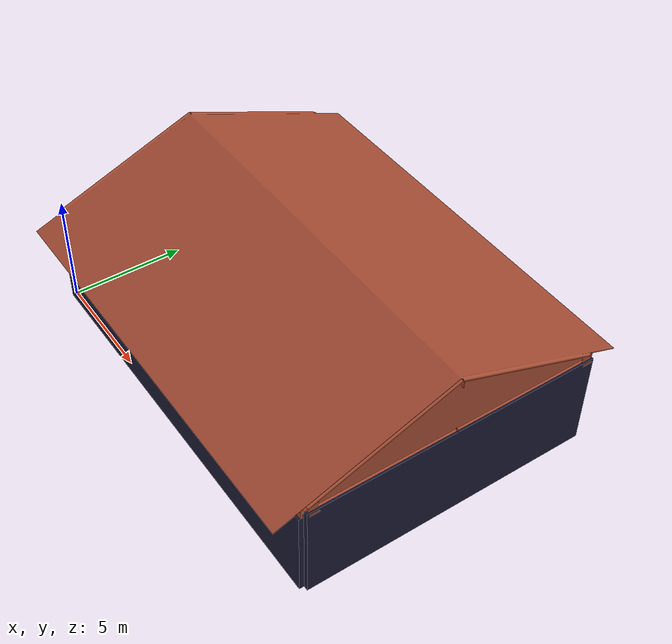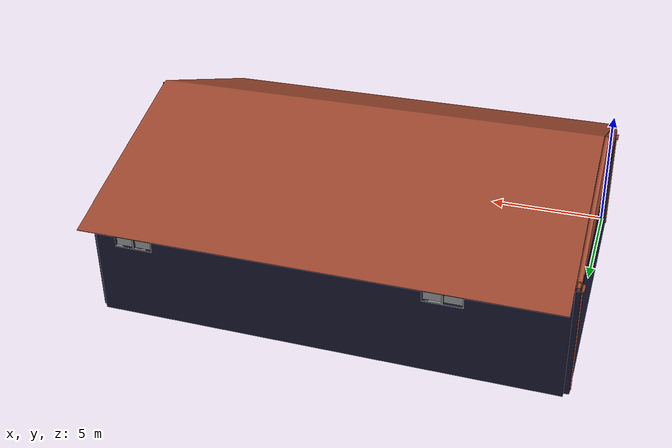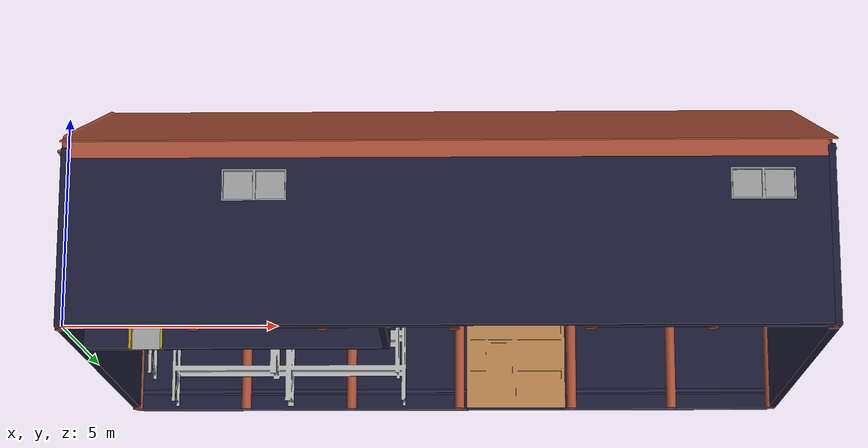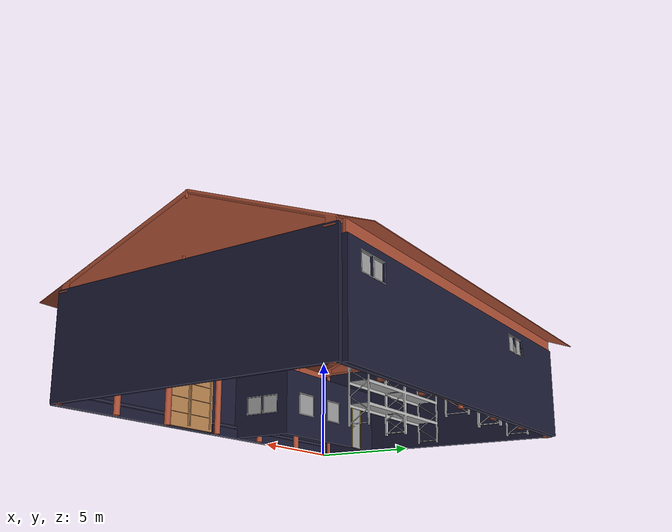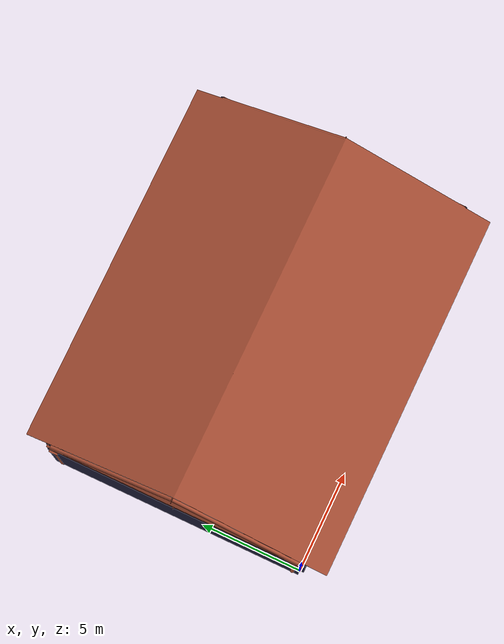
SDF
<?xml version='1.0'?>
<sdf version='1.6'>
  <model name='hangar1'>
    <link name='link_0'>
      <inertial>
        <mass>1</mass>
        <inertia>
          <ixx>0.166667</ixx>
          <ixy>0</ixy>
          <ixz>0</ixz>
          <iyy>0.166667</iyy>
          <iyz>0</iyz>
          <izz>0.166667</izz>
        </inertia>
        <pose frame=''>0 0 0 0 -0 0</pose>
      </inertial>
      <pose frame=''>0 0 0 0 -0 0</pose>
      <gravity>1</gravity>
      <self_collide>0</self_collide>
      <kinematic>0</kinematic>
      <enable_wind>0</enable_wind>
      <visual name='visual'>
        <pose frame=''>0 0 0 0 -0 0</pose>
        <geometry>
          <mesh>
            <uri>model://hangar/biela.dae</uri>
            <scale>1 1 1</scale>
          </mesh>
        </geometry>
        <material>
          <lighting>1</lighting>
          <script>
            <uri>model://hangar/materials/scripts/concrete.material</uri>
            <uri>model://hangar/materials/textures</uri>
            <name>Concrete</name>
          </script>
          <shader type='pixel'>
            <normal_map>__default__</normal_map>
          </shader>
          <ambient>1 1 1 1</ambient>
          <diffuse>0.1 0.1 0.2 1</diffuse>
          <specular>0.01 0.01 0.01 1</specular>
          <emissive>0 0 0 1</emissive>
        </material>
        <transparency>0</transparency>
        <cast_shadows>1</cast_shadows>
      </visual>
      <collision name='collision'>
        <laser_retro>0</laser_retro>
        <max_contacts>10</max_contacts>
        <pose frame=''>0 0 0 0 -0 0</pose>
        <geometry>
          <mesh>
            <uri>model://hangar/biela.dae</uri>
            <scale>1 1 1</scale>
          </mesh>
        </geometry>
        <surface>
          <friction>
            <ode>
              <mu>1</mu>
              <mu2>1</mu2>
              <fdir1>0 0 0</fdir1>
              <slip1>0</slip1>
              <slip2>0</slip2>
            </ode>
            <torsional>
              <coefficient>1</coefficient>
              <patch_radius>0</patch_radius>
              <surface_radius>0</surface_radius>
              <use_patch_radius>1</use_patch_radius>
              <ode>
                <slip>0</slip>
              </ode>
            </torsional>
          </friction>
          <bounce>
            <restitution_coefficient>0</restitution_coefficient>
            <threshold>1e+06</threshold>
          </bounce>
          <contact>
            <collide_without_contact>0</collide_without_contact>
            <collide_without_contact_bitmask>1</collide_without_contact_bitmask>
            <collide_bitmask>1</collide_bitmask>
            <ode>
              <soft_cfm>0</soft_cfm>
              <soft_erp>0.2</soft_erp>
              <kp>1e+13</kp>
              <kd>1</kd>
              <max_vel>0.01</max_vel>
              <min_depth>0</min_depth>
            </ode>
            <bullet>
              <split_impulse>1</split_impulse>
              <split_impulse_penetration_threshold>-0.01</split_impulse_penetration_threshold>
              <soft_cfm>0</soft_cfm>
              <soft_erp>0.2</soft_erp>
              <kp>1e+13</kp>
              <kd>1</kd>
            </bullet>
          </contact>
        </surface>
      </collision>
    </link>
    <link name='link_1'>
      <inertial>
        <mass>1</mass>
        <inertia>
          <ixx>0.166667</ixx>
          <ixy>0</ixy>
          <ixz>0</ixz>
          <iyy>0.166667</iyy>
          <iyz>0</iyz>
          <izz>0.166667</izz>
        </inertia>
        <pose frame=''>0 0 0 0 -0 0</pose>
      </inertial>
      <pose frame=''>0 0 0 0 -0 0</pose>
      <gravity>1</gravity>
      <self_collide>0</self_collide>
      <kinematic>0</kinematic>
      <enable_wind>0</enable_wind>
      <visual name='visual'>
        <pose frame=''>0 0 0 0 -0 0</pose>
        <geometry>
          <mesh>
            <uri>model://hangar/bokdvere.dae</uri>
            <scale>1 1 1</scale>
          </mesh>
        </geometry>
        <material>
          <lighting>1</lighting>
          <script>
            <uri>file://media/materials/scripts/gazebo.material</uri>
            <name>Gazebo/Wood</name>
          </script>
          <shader type='pixel'>
            <normal_map>__default__</normal_map>
          </shader>
          <ambient>0.678 0.565 0.051 1</ambient>
          <diffuse>0.7 0.7 0.7 1</diffuse>
          <specular>0.01 0.01 0.01 1</specular>
          <emissive>0 0 0 1</emissive>
        </material>
        <transparency>0</transparency>
        <cast_shadows>1</cast_shadows>
      </visual>
      <collision name='collision'>
        <laser_retro>0</laser_retro>
        <max_contacts>10</max_contacts>
        <pose frame=''>0 0 0 0 -0 0</pose>
        <geometry>
          <mesh>
            <uri>model://hangar/bokdvere.dae</uri>
            <scale>1 1 1</scale>
          </mesh>
        </geometry>
        <surface>
          <friction>
            <ode>
              <mu>1</mu>
              <mu2>1</mu2>
              <fdir1>0 0 0</fdir1>
              <slip1>0</slip1>
              <slip2>0</slip2>
            </ode>
            <torsional>
              <coefficient>1</coefficient>
              <patch_radius>0</patch_radius>
              <surface_radius>0</surface_radius>
              <use_patch_radius>1</use_patch_radius>
              <ode>
                <slip>0</slip>
              </ode>
            </torsional>
          </friction>
          <bounce>
            <restitution_coefficient>0</restitution_coefficient>
            <threshold>1e+06</threshold>
          </bounce>
          <contact>
            <collide_without_contact>0</collide_without_contact>
            <collide_without_contact_bitmask>1</collide_without_contact_bitmask>
            <collide_bitmask>1</collide_bitmask>
            <ode>
              <soft_cfm>0</soft_cfm>
              <soft_erp>0.2</soft_erp>
              <kp>1e+13</kp>
              <kd>1</kd>
              <max_vel>0.01</max_vel>
              <min_depth>0</min_depth>
            </ode>
            <bullet>
              <split_impulse>1</split_impulse>
              <split_impulse_penetration_threshold>-0.01</split_impulse_penetration_threshold>
              <soft_cfm>0</soft_cfm>
              <soft_erp>0.2</soft_erp>
              <kp>1e+13</kp>
              <kd>1</kd>
            </bullet>
          </contact>
        </surface>
      </collision>
    </link>
    <link name='link_10'>
      <inertial>
        <mass>1</mass>
        <inertia>
          <ixx>0.166667</ixx>
          <ixy>0</ixy>
          <ixz>0</ixz>
          <iyy>0.166667</iyy>
          <iyz>0</iyz>
          <izz>0.166667</izz>
        </inertia>
        <pose frame=''>0 0 0 0 -0 0</pose>
      </inertial>
      <pose frame=''>0 0 0 0 -0 0</pose>
      <gravity>1</gravity>
      <self_collide>0</self_collide>
      <kinematic>0</kinematic>
      <enable_wind>0</enable_wind>
      <visual name='visual'>
        <pose frame=''>0 0 0 0 -0 0</pose>
        <geometry>
          <mesh>
            <uri>model://hangar/zarubna.dae</uri>
            <scale>1 1 1</scale>
          </mesh>
        </geometry>
        <material>
          <lighting>1</lighting>
          <script>
            <uri>file://media/materials/scripts/gazebo.material</uri>
            <name>Gazebo/Grey</name>
          </script>
          <shader type='pixel'>
            <normal_map>__default__</normal_map>
          </shader>
          <ambient>0.678431 0.564706 0.0509804 1</ambient>
          <diffuse>0.7 0.7 0.7 1</diffuse>
          <specular>0.01 0.01 0.01 1</specular>
          <emissive>0 0 0 1</emissive>
        </material>
        <transparency>0</transparency>
        <cast_shadows>1</cast_shadows>
      </visual>
      <collision name='collision'>
        <laser_retro>0</laser_retro>
        <max_contacts>10</max_contacts>
        <pose frame=''>0 0 0 0 -0 0</pose>
        <geometry>
          <mesh>
            <uri>model://hangar/zarubna.dae</uri>
            <scale>1 1 1</scale>
          </mesh>
        </geometry>
        <surface>
          <friction>
            <ode>
              <mu>1</mu>
              <mu2>1</mu2>
              <fdir1>0 0 0</fdir1>
              <slip1>0</slip1>
              <slip2>0</slip2>
            </ode>
            <torsional>
              <coefficient>1</coefficient>
              <patch_radius>0</patch_radius>
              <surface_radius>0</surface_radius>
              <use_patch_radius>1</use_patch_radius>
              <ode>
                <slip>0</slip>
              </ode>
            </torsional>
          </friction>
          <bounce>
            <restitution_coefficient>0</restitution_coefficient>
            <threshold>1e+06</threshold>
          </bounce>
          <contact>
            <collide_without_contact>0</collide_without_contact>
            <collide_without_contact_bitmask>1</collide_without_contact_bitmask>
            <collide_bitmask>1</collide_bitmask>
            <ode>
              <soft_cfm>0</soft_cfm>
              <soft_erp>0.2</soft_erp>
              <kp>1e+13</kp>
              <kd>1</kd>
              <max_vel>0.01</max_vel>
              <min_depth>0</min_depth>
            </ode>
            <bullet>
              <split_impulse>1</split_impulse>
              <split_impulse_penetration_threshold>-0.01</split_impulse_penetration_threshold>
              <soft_cfm>0</soft_cfm>
              <soft_erp>0.2</soft_erp>
              <kp>1e+13</kp>
              <kd>1</kd>
            </bullet>
          </contact>
        </surface>
      </collision>
    </link>
    <link name='link_11'>
      <inertial>
        <mass>1</mass>
        <inertia>
          <ixx>0.166667</ixx>
          <ixy>0</ixy>
          <ixz>0</ixz>
          <iyy>0.166667</iyy>
          <iyz>0</iyz>
          <izz>0.166667</izz>
        </inertia>
        <pose frame=''>0 0 0 0 -0 0</pose>
      </inertial>
      <pose frame=''>0 0 0 0 -0 0</pose>
      <gravity>1</gravity>
      <self_collide>0</self_collide>
      <kinematic>0</kinematic>
      <enable_wind>0</enable_wind>
      <visual name='visual'>
        <pose frame=''>0 0 0 0 -0 0</pose>
        <geometry>
          <mesh>
            <uri>model://hangar/regal.dae</uri>
            <scale>1 1 1</scale>
          </mesh>
        </geometry>
        <material>
          <lighting>1</lighting>
          <script>
            <uri>model://hangar/materials/scripts/steel.material</uri>
            <uri>model://hangar/materials/textures</uri>
            <name>Steel</name>
          </script>
          <shader type='pixel'>
            <normal_map>__default__</normal_map>
          </shader>
          <ambient>0.6 0.3 0.2 1</ambient>
          <diffuse>0.7 0.7 0.7 1</diffuse>
          <specular>0.01 0.01 0.01 1</specular>
          <emissive>0 0 0 1</emissive>
        </material>
        <transparency>0</transparency>
        <cast_shadows>1</cast_shadows>
      </visual>
      <collision name='collision'>
        <laser_retro>0</laser_retro>
        <max_contacts>10</max_contacts>
        <pose frame=''>0 0 0 0 -0 0</pose>
        <geometry>
          <mesh>
            <uri>model://hangar/regal.dae</uri>
            <scale>1 1 1</scale>
          </mesh>
        </geometry>
        <surface>
          <friction>
            <ode>
              <mu>1</mu>
              <mu2>1</mu2>
              <fdir1>0 0 0</fdir1>
              <slip1>0</slip1>
              <slip2>0</slip2>
            </ode>
            <torsional>
              <coefficient>1</coefficient>
              <patch_radius>0</patch_radius>
              <surface_radius>0</surface_radius>
              <use_patch_radius>1</use_patch_radius>
              <ode>
                <slip>0</slip>
              </ode>
            </torsional>
          </friction>
          <bounce>
            <restitution_coefficient>0</restitution_coefficient>
            <threshold>1e+06</threshold>
          </bounce>
          <contact>
            <collide_without_contact>0</collide_without_contact>
            <collide_without_contact_bitmask>1</collide_without_contact_bitmask>
            <collide_bitmask>1</collide_bitmask>
            <ode>
              <soft_cfm>0</soft_cfm>
              <soft_erp>0.2</soft_erp>
              <kp>1e+13</kp>
              <kd>1</kd>
              <max_vel>0.01</max_vel>
              <min_depth>0</min_depth>
            </ode>
            <bullet>
              <split_impulse>1</split_impulse>
              <split_impulse_penetration_threshold>-0.01</split_impulse_penetration_threshold>
              <soft_cfm>0</soft_cfm>
              <soft_erp>0.2</soft_erp>
              <kp>1e+13</kp>
              <kd>1</kd>
            </bullet>
          </contact>
        </surface>
      </collision>
    </link>
    <link name='link_12'>
      <inertial>
        <mass>1</mass>
        <inertia>
          <ixx>0.166667</ixx>
          <ixy>0</ixy>
          <ixz>0</ixz>
          <iyy>0.166667</iyy>
          <iyz>0</iyz>
          <izz>0.166667</izz>
        </inertia>
        <pose frame=''>0 0 0 0 -0 0</pose>
      </inertial>
      <pose frame=''>0 0 0 0 -0 0</pose>
      <gravity>1</gravity>
      <self_collide>0</self_collide>
      <kinematic>0</kinematic>
      <enable_wind>0</enable_wind>
      <visual name='visual'>
        <pose frame=''>0 0 0 0 -0 0</pose>
        <geometry>
          <mesh>
            <uri>model://hangar/strecha.dae</uri>
            <scale>1 1 1</scale>
          </mesh>
        </geometry>
        <material>
          <lighting>1</lighting>
          <script>
            <uri>model://hangar/materials/scripts/brick.material</uri>
            <uri>model://hangar/materials/textures</uri>
            <name>Bricks</name>
          </script>
          <shader type='pixel'>
            <normal_map>__default__</normal_map>
          </shader>
          <ambient>1 1 1 1</ambient>
          <diffuse>0.1 0.1 0.2 1</diffuse>
          <specular>0 0 0 0</specular>
          <emissive>0 0 0 1</emissive>
        </material>
        <transparency>0</transparency>
        <cast_shadows>1</cast_shadows>
      </visual>
      <collision name='collision'>
        <laser_retro>0</laser_retro>
        <max_contacts>10</max_contacts>
        <pose frame=''>0 0 0 0 -0 0</pose>
        <geometry>
          <mesh>
            <uri>model://hangar/strecha.dae</uri>
            <scale>1 1 1</scale>
          </mesh>
        </geometry>
        <surface>
          <friction>
            <ode>
              <mu>1</mu>
              <mu2>1</mu2>
              <fdir1>0 0 0</fdir1>
              <slip1>0</slip1>
              <slip2>0</slip2>
            </ode>
            <torsional>
              <coefficient>1</coefficient>
              <patch_radius>0</patch_radius>
              <surface_radius>0</surface_radius>
              <use_patch_radius>1</use_patch_radius>
              <ode>
                <slip>0</slip>
              </ode>
            </torsional>
          </friction>
          <bounce>
            <restitution_coefficient>0</restitution_coefficient>
            <threshold>1e+06</threshold>
          </bounce>
          <contact>
            <collide_without_contact>0</collide_without_contact>
            <collide_without_contact_bitmask>1</collide_without_contact_bitmask>
            <collide_bitmask>1</collide_bitmask>
            <ode>
              <soft_cfm>0</soft_cfm>
              <soft_erp>0.2</soft_erp>
              <kp>1e+13</kp>
              <kd>1</kd>
              <max_vel>0.01</max_vel>
              <min_depth>0</min_depth>
            </ode>
            <bullet>
              <split_impulse>1</split_impulse>
              <split_impulse_penetration_threshold>-0.01</split_impulse_penetration_threshold>
              <soft_cfm>0</soft_cfm>
              <soft_erp>0.2</soft_erp>
              <kp>1e+13</kp>
              <kd>1</kd>
            </bullet>
          </contact>
        </surface>
      </collision>
    </link>
    <link name='link_2'>
      <inertial>
        <mass>1</mass>
        <inertia>
          <ixx>0.166667</ixx>
          <ixy>0</ixy>
          <ixz>0</ixz>
          <iyy>0.166667</iyy>
          <iyz>0</iyz>
          <izz>0.166667</izz>
        </inertia>
        <pose frame=''>0 0 0 0 -0 0</pose>
      </inertial>
      <pose frame=''>0 0 0 0 -0 0</pose>
      <gravity>1</gravity>
      <self_collide>0</self_collide>
      <kinematic>0</kinematic>
      <enable_wind>0</enable_wind>
      <visual name='visual'>
        <pose frame=''>0 0 0 0 -0 0</pose>
        <geometry>
          <mesh>
            <uri>model://hangar/bokstrecha.dae</uri>
            <scale>1 1 1</scale>
          </mesh>
        </geometry>
        <material>
          <lighting>1</lighting>
          <script>
            <uri>model://hangar/materials/scripts/brick90.material</uri>
            <uri>model://hangar/materials/textures</uri>
            <name>Bricks90</name>
          </script>
          <shader type='pixel'>
            <normal_map>__default__</normal_map>
          </shader>
          <ambient>1 1 1 1</ambient>
          <diffuse>0.7 0.7 0.7 1</diffuse>
          <specular>0.01 0.01 0.01 1</specular>
          <emissive>0 0 0 1</emissive>
        </material>
        <transparency>0</transparency>
        <cast_shadows>1</cast_shadows>
      </visual>
      <collision name='collision'>
        <laser_retro>0</laser_retro>
        <max_contacts>10</max_contacts>
        <pose frame=''>0 0 0 0 -0 0</pose>
        <geometry>
          <mesh>
            <uri>model://hangar/bokstrecha.dae</uri>
            <scale>1 1 1</scale>
          </mesh>
        </geometry>
        <surface>
          <friction>
            <ode>
              <mu>1</mu>
              <mu2>1</mu2>
              <fdir1>0 0 0</fdir1>
              <slip1>0</slip1>
              <slip2>0</slip2>
            </ode>
            <torsional>
              <coefficient>1</coefficient>
              <patch_radius>0</patch_radius>
              <surface_radius>0</surface_radius>
              <use_patch_radius>1</use_patch_radius>
              <ode>
                <slip>0</slip>
              </ode>
            </torsional>
          </friction>
          <bounce>
            <restitution_coefficient>0</restitution_coefficient>
            <threshold>1e+06</threshold>
          </bounce>
          <contact>
            <collide_without_contact>0</collide_without_contact>
            <collide_without_contact_bitmask>1</collide_without_contact_bitmask>
            <collide_bitmask>1</collide_bitmask>
            <ode>
              <soft_cfm>0</soft_cfm>
              <soft_erp>0.2</soft_erp>
              <kp>1e+13</kp>
              <kd>1</kd>
              <max_vel>0.01</max_vel>
              <min_depth>0</min_depth>
            </ode>
            <bullet>
              <split_impulse>1</split_impulse>
              <split_impulse_penetration_threshold>-0.01</split_impulse_penetration_threshold>
              <soft_cfm>0</soft_cfm>
              <soft_erp>0.2</soft_erp>
              <kp>1e+13</kp>
              <kd>1</kd>
            </bullet>
          </contact>
        </surface>
      </collision>
    </link>
    <link name='link_3'>
      <inertial>
        <mass>1</mass>
        <inertia>
          <ixx>0.166667</ixx>
          <ixy>0</ixy>
          <ixz>0</ixz>
          <iyy>0.166667</iyy>
          <iyz>0</iyz>
          <izz>0.166667</izz>
        </inertia>
        <pose frame=''>0 0 0 0 -0 0</pose>
      </inertial>
      <pose frame=''>0 0 0 0 -0 0</pose>
      <gravity>1</gravity>
      <self_collide>0</self_collide>
      <kinematic>0</kinematic>
      <enable_wind>0</enable_wind>
      <visual name='visual'>
        <pose frame=''>0 0 0 0 -0 0</pose>
        <geometry>
          <mesh>
            <uri>model://hangar/budkaoknadverebiela.dae</uri>
            <scale>1 1 1</scale>
          </mesh>
        </geometry>
        <material>
          <lighting>1</lighting>
          <script>
            <uri>file://media/materials/scripts/gazebo.material</uri>
            <name>Gazebo/Grey</name>
          </script>
          <shader type='pixel'>
            <normal_map>__default__</normal_map>
          </shader>
          <ambient>0.6 0.6 0.6 1</ambient>
          <diffuse>0.7 0.7 0.7 1</diffuse>
          <specular>0.01 0.01 0.01 1</specular>
          <emissive>0 0 0 1</emissive>
        </material>
        <transparency>0</transparency>
        <cast_shadows>1</cast_shadows>
      </visual>
      <collision name='collision'>
        <laser_retro>0</laser_retro>
        <max_contacts>10</max_contacts>
        <pose frame=''>0 0 0 0 -0 0</pose>
        <geometry>
          <mesh>
            <uri>model://hangar/budkaoknadverebiela.dae</uri>
            <scale>1 1 1</scale>
          </mesh>
        </geometry>
        <surface>
          <friction>
            <ode>
              <mu>1</mu>
              <mu2>1</mu2>
              <fdir1>0 0 0</fdir1>
              <slip1>0</slip1>
              <slip2>0</slip2>
            </ode>
            <torsional>
              <coefficient>1</coefficient>
              <patch_radius>0</patch_radius>
              <surface_radius>0</surface_radius>
              <use_patch_radius>1</use_patch_radius>
              <ode>
                <slip>0</slip>
              </ode>
            </torsional>
          </friction>
          <bounce>
            <restitution_coefficient>0</restitution_coefficient>
            <threshold>1e+06</threshold>
          </bounce>
          <contact>
            <collide_without_contact>0</collide_without_contact>
            <collide_without_contact_bitmask>1</collide_without_contact_bitmask>
            <collide_bitmask>1</collide_bitmask>
            <ode>
              <soft_cfm>0</soft_cfm>
              <soft_erp>0.2</soft_erp>
              <kp>1e+13</kp>
              <kd>1</kd>
              <max_vel>0.01</max_vel>
              <min_depth>0</min_depth>
            </ode>
            <bullet>
              <split_impulse>1</split_impulse>
              <split_impulse_penetration_threshold>-0.01</split_impulse_penetration_threshold>
              <soft_cfm>0</soft_cfm>
              <soft_erp>0.2</soft_erp>
              <kp>1e+13</kp>
              <kd>1</kd>
            </bullet>
          </contact>
        </surface>
      </collision>
    </link>
    <link name='link_5'>
      <inertial>
        <mass>1</mass>
        <inertia>
          <ixx>0.166667</ixx>
          <ixy>0</ixy>
          <ixz>0</ixz>
          <iyy>0.166667</iyy>
          <iyz>0</iyz>
          <izz>0.166667</izz>
        </inertia>
        <pose frame=''>0 0 0 0 -0 0</pose>
      </inertial>
      <pose frame=''>0 0 0 0 -0 0</pose>
      <gravity>1</gravity>
      <self_collide>0</self_collide>
      <kinematic>0</kinematic>
      <enable_wind>0</enable_wind>
      <visual name='visual'>
        <pose frame=''>0 0 0 0 -0 0</pose>
        <geometry>
          <mesh>
            <uri>model://hangar/oknobok.dae</uri>
            <scale>1 1 1</scale>
          </mesh>
        </geometry>
        <material>
          <lighting>1</lighting>
          <script>
            <uri>file://media/materials/scripts/gazebo.material</uri>
            <name>Gazebo/Grey</name>
          </script>
          <shader type='pixel'>
            <normal_map>__default__</normal_map>
          </shader>
          <ambient>0.964 0.996 1 0.7</ambient>
          <diffuse>0.7 0.7 0.7 1</diffuse>
          <specular>0.01 0.01 0.01 1</specular>
          <emissive>0 0 0 1</emissive>
        </material>
        <transparency>0</transparency>
        <cast_shadows>1</cast_shadows>
      </visual>
      <collision name='collision'>
        <laser_retro>0</laser_retro>
        <max_contacts>10</max_contacts>
        <pose frame=''>0 0 0 0 -0 0</pose>
        <geometry>
          <mesh>
            <uri>model://hangar/oknobok.dae</uri>
            <scale>1 1 1</scale>
          </mesh>
        </geometry>
        <surface>
          <friction>
            <ode>
              <mu>1</mu>
              <mu2>1</mu2>
              <fdir1>0 0 0</fdir1>
              <slip1>0</slip1>
              <slip2>0</slip2>
            </ode>
            <torsional>
              <coefficient>1</coefficient>
              <patch_radius>0</patch_radius>
              <surface_radius>0</surface_radius>
              <use_patch_radius>1</use_patch_radius>
              <ode>
                <slip>0</slip>
              </ode>
            </torsional>
          </friction>
          <bounce>
            <restitution_coefficient>0</restitution_coefficient>
            <threshold>1e+06</threshold>
          </bounce>
          <contact>
            <collide_without_contact>0</collide_without_contact>
            <collide_without_contact_bitmask>1</collide_without_contact_bitmask>
            <collide_bitmask>1</collide_bitmask>
            <ode>
              <soft_cfm>0</soft_cfm>
              <soft_erp>0.2</soft_erp>
              <kp>1e+13</kp>
              <kd>1</kd>
              <max_vel>0.01</max_vel>
              <min_depth>0</min_depth>
            </ode>
            <bullet>
              <split_impulse>1</split_impulse>
              <split_impulse_penetration_threshold>-0.01</split_impulse_penetration_threshold>
              <soft_cfm>0</soft_cfm>
              <soft_erp>0.2</soft_erp>
              <kp>1e+13</kp>
              <kd>1</kd>
            </bullet>
          </contact>
        </surface>
      </collision>
    </link>
    <link name='link_6'>
      <inertial>
        <mass>1</mass>
        <inertia>
          <ixx>0.166667</ixx>
          <ixy>0</ixy>
          <ixz>0</ixz>
          <iyy>0.166667</iyy>
          <iyz>0</iyz>
          <izz>0.166667</izz>
        </inertia>
        <pose frame=''>0 0 0 0 -0 0</pose>
      </inertial>
      <pose frame=''>0 0 0 0 -0 0</pose>
      <gravity>1</gravity>
      <self_collide>0</self_collide>
      <kinematic>0</kinematic>
      <enable_wind>0</enable_wind>
      <visual name='visual'>
        <pose frame=''>0 0 0 0 -0 0</pose>
        <geometry>
          <mesh>
            <uri>model://hangar/plechbok.dae</uri>
            <scale>1 1 1</scale>
          </mesh>
        </geometry>
        <material>
          <lighting>1</lighting>
          <script>
            <uri>model://hangar/materials/scripts/concrete.material</uri>
            <uri>model://hangar/materials/textures</uri>
            <name>Concrete</name>
          </script>
          <shader type='pixel'>
            <normal_map>__default__</normal_map>
          </shader>
          <ambient>1 1 1 1</ambient>
          <diffuse>0.1 0.1 0.2 1</diffuse>
          <specular>0.01 0.01 0.01 1</specular>
          <emissive>0 0 0 1</emissive>
        </material>
        <transparency>0</transparency>
        <cast_shadows>1</cast_shadows>
      </visual>
      <collision name='collision'>
        <laser_retro>0</laser_retro>
        <max_contacts>10</max_contacts>
        <pose frame=''>0 0 0 0 -0 0</pose>
        <geometry>
          <mesh>
            <uri>model://hangar/plechbok.dae</uri>
            <scale>1 1 1</scale>
          </mesh>
        </geometry>
        <surface>
          <friction>
            <ode>
              <mu>1</mu>
              <mu2>1</mu2>
              <fdir1>0 0 0</fdir1>
              <slip1>0</slip1>
              <slip2>0</slip2>
            </ode>
            <torsional>
              <coefficient>1</coefficient>
              <patch_radius>0</patch_radius>
              <surface_radius>0</surface_radius>
              <use_patch_radius>1</use_patch_radius>
              <ode>
                <slip>0</slip>
              </ode>
            </torsional>
          </friction>
          <bounce>
            <restitution_coefficient>0</restitution_coefficient>
            <threshold>1e+06</threshold>
          </bounce>
          <contact>
            <collide_without_contact>0</collide_without_contact>
            <collide_without_contact_bitmask>1</collide_without_contact_bitmask>
            <collide_bitmask>1</collide_bitmask>
            <ode>
              <soft_cfm>0</soft_cfm>
              <soft_erp>0.2</soft_erp>
              <kp>1e+13</kp>
              <kd>1</kd>
              <max_vel>0.01</max_vel>
              <min_depth>0</min_depth>
            </ode>
            <bullet>
              <split_impulse>1</split_impulse>
              <split_impulse_penetration_threshold>-0.01</split_impulse_penetration_threshold>
              <soft_cfm>0</soft_cfm>
              <soft_erp>0.2</soft_erp>
              <kp>1e+13</kp>
              <kd>1</kd>
            </bullet>
          </contact>
        </surface>
      </collision>
    </link>
    <link name='link_7'>
      <inertial>
        <mass>1</mass>
        <inertia>
          <ixx>0.166667</ixx>
          <ixy>0</ixy>
          <ixz>0</ixz>
          <iyy>0.166667</iyy>
          <iyz>0</iyz>
          <izz>0.166667</izz>
        </inertia>
        <pose frame=''>0 0 0 0 -0 0</pose>
      </inertial>
      <pose frame=''>0 0 0 0 -0 0</pose>
      <gravity>1</gravity>
      <self_collide>0</self_collide>
      <kinematic>0</kinematic>
      <enable_wind>0</enable_wind>
      <visual name='visual'>
        <pose frame=''>0 0 0 0 -0 0</pose>
        <geometry>
          <mesh>
            <uri>model://hangar/sklo.dae</uri>
            <scale>1 1 1</scale>
          </mesh>
        </geometry>
        <material>
          <lighting>1</lighting>
          <script>
            <uri>file://media/materials/scripts/gazebo.material</uri>
            <name>Gazebo/Grey</name>
          </script>
          <shader type='pixel'>
            <normal_map>__default__</normal_map>
          </shader>
          <ambient>0.3 0.3 0.3 1</ambient>
          <diffuse>0.7 0.7 0.7 1</diffuse>
          <specular>0.01 0.01 0.01 1</specular>
          <emissive>0 0 0 1</emissive>
        </material>
        <transparency>0</transparency>
        <cast_shadows>1</cast_shadows>
      </visual>
      <collision name='collision'>
        <laser_retro>0</laser_retro>
        <max_contacts>10</max_contacts>
        <pose frame=''>0 0 0 0 -0 0</pose>
        <geometry>
          <mesh>
            <uri>model://hangar/sklo.dae</uri>
            <scale>1 1 1</scale>
          </mesh>
        </geometry>
        <surface>
          <friction>
            <ode>
              <mu>1</mu>
              <mu2>1</mu2>
              <fdir1>0 0 0</fdir1>
              <slip1>0</slip1>
              <slip2>0</slip2>
            </ode>
            <torsional>
              <coefficient>1</coefficient>
              <patch_radius>0</patch_radius>
              <surface_radius>0</surface_radius>
              <use_patch_radius>1</use_patch_radius>
              <ode>
                <slip>0</slip>
              </ode>
            </torsional>
          </friction>
          <bounce>
            <restitution_coefficient>0</restitution_coefficient>
            <threshold>1e+06</threshold>
          </bounce>
          <contact>
            <collide_without_contact>0</collide_without_contact>
            <collide_without_contact_bitmask>1</collide_without_contact_bitmask>
            <collide_bitmask>1</collide_bitmask>
            <ode>
              <soft_cfm>0</soft_cfm>
              <soft_erp>0.2</soft_erp>
              <kp>1e+13</kp>
              <kd>1</kd>
              <max_vel>0.01</max_vel>
              <min_depth>0</min_depth>
            </ode>
            <bullet>
              <split_impulse>1</split_impulse>
              <split_impulse_penetration_threshold>-0.01</split_impulse_penetration_threshold>
              <soft_cfm>0</soft_cfm>
              <soft_erp>0.2</soft_erp>
              <kp>1e+13</kp>
              <kd>1</kd>
            </bullet>
          </contact>
        </surface>
      </collision>
    </link>
    <link name='link_9'>
      <inertial>
        <mass>1</mass>
        <inertia>
          <ixx>0.166667</ixx>
          <ixy>0</ixy>
          <ixz>0</ixz>
          <iyy>0.166667</iyy>
          <iyz>0</iyz>
          <izz>0.166667</izz>
        </inertia>
        <pose frame=''>0 0 0 0 -0 0</pose>
      </inertial>
      <pose frame=''>0 0 0 0 -0 0</pose>
      <gravity>1</gravity>
      <self_collide>0</self_collide>
      <kinematic>0</kinematic>
      <enable_wind>0</enable_wind>
      <visual name='visual'>
        <pose frame=''>0 0 0 0 -0 0</pose>
        <geometry>
          <mesh>
            <uri>model://hangar/tienidlanaokno.dae</uri>
            <scale>1 1 1</scale>
          </mesh>
        </geometry>
        <material>
          <lighting>1</lighting>
          <script>
            <uri>file://media/materials/scripts/gazebo.material</uri>
            <name>Gazebo/Grey</name>
          </script>
          <shader type='pixel'>
            <normal_map>__default__</normal_map>
          </shader>
          <ambient>0.3 0.3 0.3 1</ambient>
          <diffuse>0.7 0.7 0.7 1</diffuse>
          <specular>0.01 0.01 0.01 1</specular>
          <emissive>0 0 0 1</emissive>
        </material>
        <transparency>0</transparency>
        <cast_shadows>1</cast_shadows>
      </visual>
      <collision name='collision'>
        <laser_retro>0</laser_retro>
        <max_contacts>10</max_contacts>
        <pose frame=''>0 0 0 0 -0 0</pose>
        <geometry>
          <mesh>
            <uri>model://hangar/tienidlanaokno.dae</uri>
            <scale>1 1 1</scale>
          </mesh>
        </geometry>
        <surface>
          <friction>
            <ode>
              <mu>1</mu>
              <mu2>1</mu2>
              <fdir1>0 0 0</fdir1>
              <slip1>0</slip1>
              <slip2>0</slip2>
            </ode>
            <torsional>
              <coefficient>1</coefficient>
              <patch_radius>0</patch_radius>
              <surface_radius>0</surface_radius>
              <use_patch_radius>1</use_patch_radius>
              <ode>
                <slip>0</slip>
              </ode>
            </torsional>
          </friction>
          <bounce>
            <restitution_coefficient>0</restitution_coefficient>
            <threshold>1e+06</threshold>
          </bounce>
          <contact>
            <collide_without_contact>0</collide_without_contact>
            <collide_without_contact_bitmask>1</collide_without_contact_bitmask>
            <collide_bitmask>1</collide_bitmask>
            <ode>
              <soft_cfm>0</soft_cfm>
              <soft_erp>0.2</soft_erp>
              <kp>1e+13</kp>
              <kd>1</kd>
              <max_vel>0.01</max_vel>
              <min_depth>0</min_depth>
            </ode>
            <bullet>
              <split_impulse>1</split_impulse>
              <split_impulse_penetration_threshold>-0.01</split_impulse_penetration_threshold>
              <soft_cfm>0</soft_cfm>
              <soft_erp>0.2</soft_erp>
              <kp>1e+13</kp>
              <kd>1</kd>
            </bullet>
          </contact>
        </surface>
      </collision>
    </link>
    <static>1</static>
    <allow_auto_disable>1</allow_auto_disable>
  </model>
</sdf>
